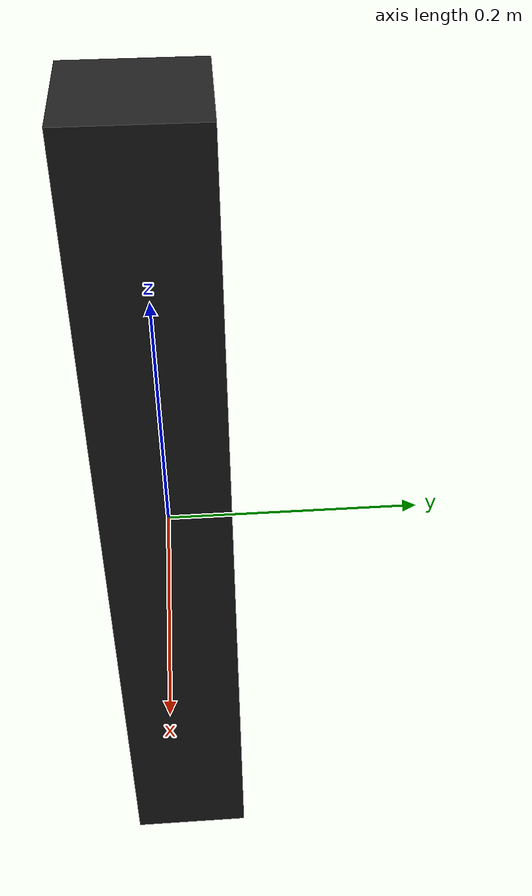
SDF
<?xml version="1.0" ?>
<sdf version="1.6">
  <model name="regolo7">
    <static>true</static>
    <link name="link">
      <collision name="collision">
        <geometry>
          <mesh>
            <uri>model://regolo7/meshes/regolo7.stl</uri>
            <scale>0.1 0.1 0.1</scale>
          </mesh>
        </geometry>
      </collision>
      <visual name="visual">
        <geometry>
          <mesh>
            <uri>model://regolo7/meshes/regolo7.stl</uri>
            <scale>0.1 0.1 0.1</scale>
          </mesh>
        </geometry>
        <material>
          <script>
            <uri>file://media/materials/scripts/gazebo.material</uri>
            <name>Gazebo/Black</name> <!-- Change this to the desired color -->
          </script>
        </material>
      </visual>
    </link>
  </model>
</sdf>
